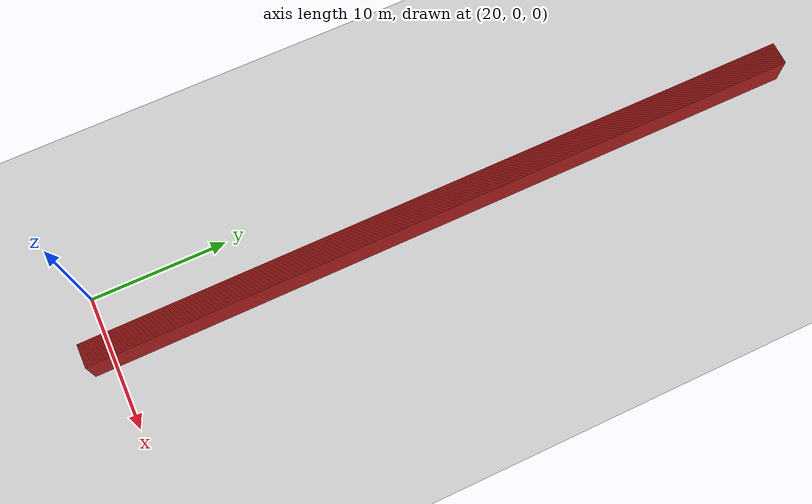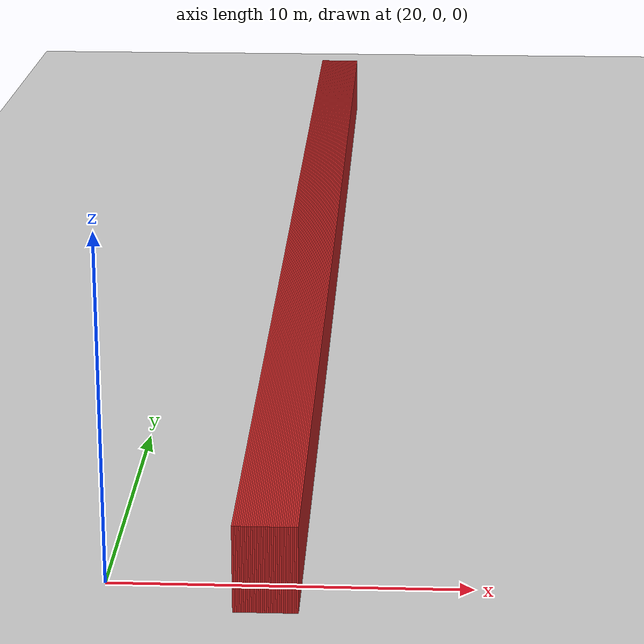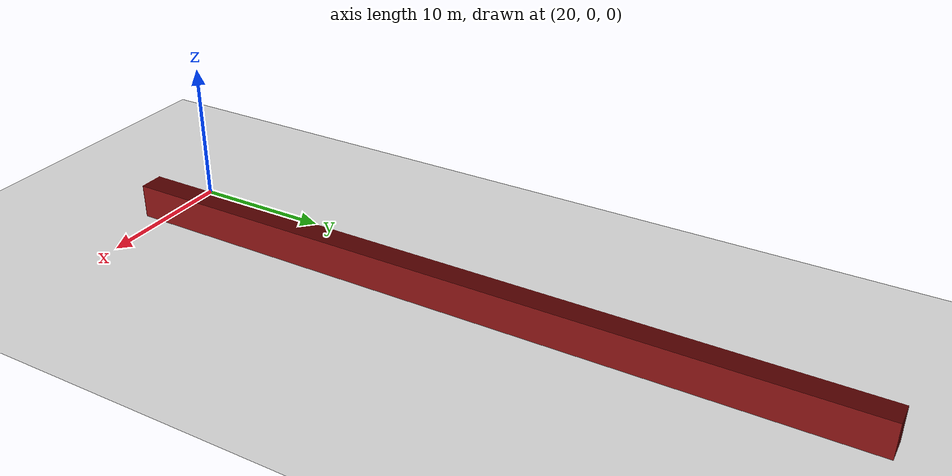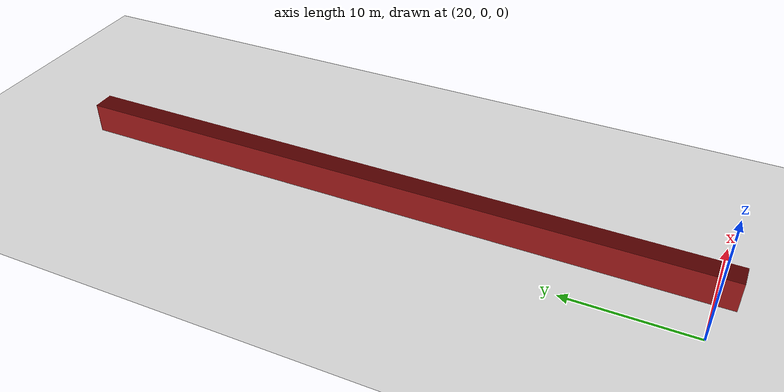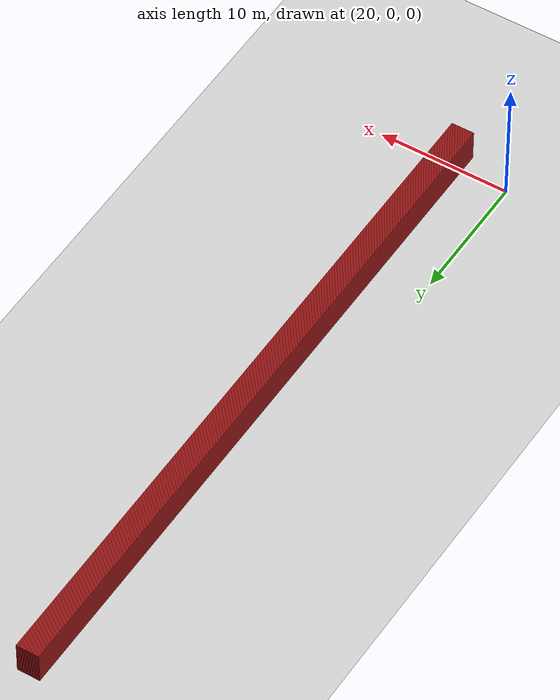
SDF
<sdf version="1.4">
 <world name="1_wall">
  <model name="ground_plane">
   <static>1</static>
   <link name="link">
    <collision name="collision">
     <geometry><plane><normal>0 0 1</normal><size>1000 1000</size></plane></geometry>
     <surface><friction><ode><mu>100</mu><mu2>50</mu2></ode></friction></surface>
    </collision>
    <visual name="visual">
     <cast_shadows>0</cast_shadows>
     <geometry><plane><normal>0 0 1</normal><size>10000 10000</size></plane></geometry>
     <material>
      <script><uri>file://media/materials/scripts/gazebo.material</uri><name>Gazebo/Grey</name></script>
     </material>
    </visual>
    <velocity_decay><linear>0</linear><angular>0</angular></velocity_decay>
   </link>
  </model>
  <model name="Wall_502">
   <static>1</static>
   <link name="Wall_502">
    <collision name="Wall_Collision_502">
     <geometry><box><size>53.65 0.05 2.5</size></box></geometry>
     <pose>0 0 1.25 0 -0 0</pose>
    </collision>
    <visual name="Wall_Visual_502">
     <pose>0 0 1.25 0 -0 0</pose>
     <geometry><box><size>53.65 0.05 2.5</size></box></geometry>
     <material>
      <script><uri>file://media/materials/scripts/gazebo.material</uri><name>Gazebo/Red</name></script>
     </material>
    </visual>
    <velocity_decay><linear>0</linear><angular>0</angular></velocity_decay>
    <pose>23.6 25.3 0 0 0 1.5707963267948966</pose>
   </link>
  </model>
  <model name="Wall_503">
   <static>1</static>
   <link name="Wall_503">
    <collision name="Wall_Collision_503">
     <geometry><box><size>53.65 0.05 2.5</size></box></geometry>
     <pose>0 0 1.25 0 -0 0</pose>
    </collision>
    <visual name="Wall_Visual_503">
     <pose>0 0 1.25 0 -0 0</pose>
     <geometry><box><size>53.65 0.05 2.5</size></box></geometry>
     <material>
      <script><uri>file://media/materials/scripts/gazebo.material</uri><name>Gazebo/Red</name></script>
     </material>
    </visual>
    <velocity_decay><linear>0</linear><angular>0</angular></velocity_decay>
    <pose>23.65 25.3 0 0 0 1.5707963267948966</pose>
   </link>
  </model>
  <model name="Wall_504">
   <static>1</static>
   <link name="Wall_504">
    <collision name="Wall_Collision_504">
     <geometry><box><size>53.65 0.05 2.5</size></box></geometry>
     <pose>0 0 1.25 0 -0 0</pose>
    </collision>
    <visual name="Wall_Visual_504">
     <pose>0 0 1.25 0 -0 0</pose>
     <geometry><box><size>53.65 0.05 2.5</size></box></geometry>
     <material>
      <script><uri>file://media/materials/scripts/gazebo.material</uri><name>Gazebo/Red</name></script>
     </material>
    </visual>
    <velocity_decay><linear>0</linear><angular>0</angular></velocity_decay>
    <pose>23.7 25.3 0 0 0 1.5707963267948966</pose>
   </link>
  </model>
  <model name="Wall_505">
   <static>1</static>
   <link name="Wall_505">
    <collision name="Wall_Collision_505">
     <geometry><box><size>53.65 0.05 2.5</size></box></geometry>
     <pose>0 0 1.25 0 -0 0</pose>
    </collision>
    <visual name="Wall_Visual_505">
     <pose>0 0 1.25 0 -0 0</pose>
     <geometry><box><size>53.65 0.05 2.5</size></box></geometry>
     <material>
      <script><uri>file://media/materials/scripts/gazebo.material</uri><name>Gazebo/Red</name></script>
     </material>
    </visual>
    <velocity_decay><linear>0</linear><angular>0</angular></velocity_decay>
    <pose>23.75 25.3 0 0 0 1.5707963267948966</pose>
   </link>
  </model>
  <model name="Wall_506">
   <static>1</static>
   <link name="Wall_506">
    <collision name="Wall_Collision_506">
     <geometry><box><size>53.65 0.05 2.5</size></box></geometry>
     <pose>0 0 1.25 0 -0 0</pose>
    </collision>
    <visual name="Wall_Visual_506">
     <pose>0 0 1.25 0 -0 0</pose>
     <geometry><box><size>53.65 0.05 2.5</size></box></geometry>
     <material>
      <script><uri>file://media/materials/scripts/gazebo.material</uri><name>Gazebo/Red</name></script>
     </material>
    </visual>
    <velocity_decay><linear>0</linear><angular>0</angular></velocity_decay>
    <pose>23.8 25.3 0 0 0 1.5707963267948966</pose>
   </link>
  </model>
  <model name="Wall_507">
   <static>1</static>
   <link name="Wall_507">
    <collision name="Wall_Collision_507">
     <geometry><box><size>53.65 0.05 2.5</size></box></geometry>
     <pose>0 0 1.25 0 -0 0</pose>
    </collision>
    <visual name="Wall_Visual_507">
     <pose>0 0 1.25 0 -0 0</pose>
     <geometry><box><size>53.65 0.05 2.5</size></box></geometry>
     <material>
      <script><uri>file://media/materials/scripts/gazebo.material</uri><name>Gazebo/Red</name></script>
     </material>
    </visual>
    <velocity_decay><linear>0</linear><angular>0</angular></velocity_decay>
    <pose>23.85 25.3 0 0 0 1.5707963267948966</pose>
   </link>
  </model>
  <model name="Wall_508">
   <static>1</static>
   <link name="Wall_508">
    <collision name="Wall_Collision_508">
     <geometry><box><size>53.65 0.05 2.5</size></box></geometry>
     <pose>0 0 1.25 0 -0 0</pose>
    </collision>
    <visual name="Wall_Visual_508">
     <pose>0 0 1.25 0 -0 0</pose>
     <geometry><box><size>53.65 0.05 2.5</size></box></geometry>
     <material>
      <script><uri>file://media/materials/scripts/gazebo.material</uri><name>Gazebo/Red</name></script>
     </material>
    </visual>
    <velocity_decay><linear>0</linear><angular>0</angular></velocity_decay>
    <pose>23.9 25.3 0 0 0 1.5707963267948966</pose>
   </link>
  </model>
  <model name="Wall_509">
   <static>1</static>
   <link name="Wall_509">
    <collision name="Wall_Collision_509">
     <geometry><box><size>53.65 0.05 2.5</size></box></geometry>
     <pose>0 0 1.25 0 -0 0</pose>
    </collision>
    <visual name="Wall_Visual_509">
     <pose>0 0 1.25 0 -0 0</pose>
     <geometry><box><size>53.65 0.05 2.5</size></box></geometry>
     <material>
      <script><uri>file://media/materials/scripts/gazebo.material</uri><name>Gazebo/Red</name></script>
     </material>
    </visual>
    <velocity_decay><linear>0</linear><angular>0</angular></velocity_decay>
    <pose>23.95 25.3 0 0 0 1.5707963267948966</pose>
   </link>
  </model>
  <model name="Wall_510">
   <static>1</static>
   <link name="Wall_510">
    <collision name="Wall_Collision_510">
     <geometry><box><size>53.65 0.05 2.5</size></box></geometry>
     <pose>0 0 1.25 0 -0 0</pose>
    </collision>
    <visual name="Wall_Visual_510">
     <pose>0 0 1.25 0 -0 0</pose>
     <geometry><box><size>53.65 0.05 2.5</size></box></geometry>
     <material>
      <script><uri>file://media/materials/scripts/gazebo.material</uri><name>Gazebo/Red</name></script>
     </material>
    </visual>
    <velocity_decay><linear>0</linear><angular>0</angular></velocity_decay>
    <pose>24.0 25.3 0 0 0 1.5707963267948966</pose>
   </link>
  </model>
  <model name="Wall_511">
   <static>1</static>
   <link name="Wall_511">
    <collision name="Wall_Collision_511">
     <geometry><box><size>53.65 0.05 2.5</size></box></geometry>
     <pose>0 0 1.25 0 -0 0</pose>
    </collision>
    <visual name="Wall_Visual_511">
     <pose>0 0 1.25 0 -0 0</pose>
     <geometry><box><size>53.65 0.05 2.5</size></box></geometry>
     <material>
      <script><uri>file://media/materials/scripts/gazebo.material</uri><name>Gazebo/Red</name></script>
     </material>
    </visual>
    <velocity_decay><linear>0</linear><angular>0</angular></velocity_decay>
    <pose>24.05 25.3 0 0 0 1.5707963267948966</pose>
   </link>
  </model>
  <model name="Wall_512">
   <static>1</static>
   <link name="Wall_512">
    <collision name="Wall_Collision_512">
     <geometry><box><size>53.65 0.05 2.5</size></box></geometry>
     <pose>0 0 1.25 0 -0 0</pose>
    </collision>
    <visual name="Wall_Visual_512">
     <pose>0 0 1.25 0 -0 0</pose>
     <geometry><box><size>53.65 0.05 2.5</size></box></geometry>
     <material>
      <script><uri>file://media/materials/scripts/gazebo.material</uri><name>Gazebo/Red</name></script>
     </material>
    </visual>
    <velocity_decay><linear>0</linear><angular>0</angular></velocity_decay>
    <pose>24.1 25.3 0 0 0 1.5707963267948966</pose>
   </link>
  </model>
  <model name="Wall_513">
   <static>1</static>
   <link name="Wall_513">
    <collision name="Wall_Collision_513">
     <geometry><box><size>53.65 0.05 2.5</size></box></geometry>
     <pose>0 0 1.25 0 -0 0</pose>
    </collision>
    <visual name="Wall_Visual_513">
     <pose>0 0 1.25 0 -0 0</pose>
     <geometry><box><size>53.65 0.05 2.5</size></box></geometry>
     <material>
      <script><uri>file://media/materials/scripts/gazebo.material</uri><name>Gazebo/Red</name></script>
     </material>
    </visual>
    <velocity_decay><linear>0</linear><angular>0</angular></velocity_decay>
    <pose>24.15 25.3 0 0 0 1.5707963267948966</pose>
   </link>
  </model>
  <model name="Wall_514">
   <static>1</static>
   <link name="Wall_514">
    <collision name="Wall_Collision_514">
     <geometry><box><size>53.65 0.05 2.5</size></box></geometry>
     <pose>0 0 1.25 0 -0 0</pose>
    </collision>
    <visual name="Wall_Visual_514">
     <pose>0 0 1.25 0 -0 0</pose>
     <geometry><box><size>53.65 0.05 2.5</size></box></geometry>
     <material>
      <script><uri>file://media/materials/scripts/gazebo.material</uri><name>Gazebo/Red</name></script>
     </material>
    </visual>
    <velocity_decay><linear>0</linear><angular>0</angular></velocity_decay>
    <pose>24.2 25.3 0 0 0 1.5707963267948966</pose>
   </link>
  </model>
  <model name="Wall_515">
   <static>1</static>
   <link name="Wall_515">
    <collision name="Wall_Collision_515">
     <geometry><box><size>53.65 0.05 2.5</size></box></geometry>
     <pose>0 0 1.25 0 -0 0</pose>
    </collision>
    <visual name="Wall_Visual_515">
     <pose>0 0 1.25 0 -0 0</pose>
     <geometry><box><size>53.65 0.05 2.5</size></box></geometry>
     <material>
      <script><uri>file://media/materials/scripts/gazebo.material</uri><name>Gazebo/Red</name></script>
     </material>
    </visual>
    <velocity_decay><linear>0</linear><angular>0</angular></velocity_decay>
    <pose>24.25 25.3 0 0 0 1.5707963267948966</pose>
   </link>
  </model>
  <model name="Wall_516">
   <static>1</static>
   <link name="Wall_516">
    <collision name="Wall_Collision_516">
     <geometry><box><size>53.65 0.05 2.5</size></box></geometry>
     <pose>0 0 1.25 0 -0 0</pose>
    </collision>
    <visual name="Wall_Visual_516">
     <pose>0 0 1.25 0 -0 0</pose>
     <geometry><box><size>53.65 0.05 2.5</size></box></geometry>
     <material>
      <script><uri>file://media/materials/scripts/gazebo.material</uri><name>Gazebo/Red</name></script>
     </material>
    </visual>
    <velocity_decay><linear>0</linear><angular>0</angular></velocity_decay>
    <pose>24.3 25.3 0 0 0 1.5707963267948966</pose>
   </link>
  </model>
  <model name="Wall_517">
   <static>1</static>
   <link name="Wall_517">
    <collision name="Wall_Collision_517">
     <geometry><box><size>53.65 0.05 2.5</size></box></geometry>
     <pose>0 0 1.25 0 -0 0</pose>
    </collision>
    <visual name="Wall_Visual_517">
     <pose>0 0 1.25 0 -0 0</pose>
     <geometry><box><size>53.65 0.05 2.5</size></box></geometry>
     <material>
      <script><uri>file://media/materials/scripts/gazebo.material</uri><name>Gazebo/Red</name></script>
     </material>
    </visual>
    <velocity_decay><linear>0</linear><angular>0</angular></velocity_decay>
    <pose>24.35 25.3 0 0 0 1.5707963267948966</pose>
   </link>
  </model>
  <model name="Wall_518">
   <static>1</static>
   <link name="Wall_518">
    <collision name="Wall_Collision_518">
     <geometry><box><size>53.65 0.05 2.5</size></box></geometry>
     <pose>0 0 1.25 0 -0 0</pose>
    </collision>
    <visual name="Wall_Visual_518">
     <pose>0 0 1.25 0 -0 0</pose>
     <geometry><box><size>53.65 0.05 2.5</size></box></geometry>
     <material>
      <script><uri>file://media/materials/scripts/gazebo.material</uri><name>Gazebo/Red</name></script>
     </material>
    </visual>
    <velocity_decay><linear>0</linear><angular>0</angular></velocity_decay>
    <pose>24.4 25.3 0 0 0 1.5707963267948966</pose>
   </link>
  </model>
  <model name="Wall_519">
   <static>1</static>
   <link name="Wall_519">
    <collision name="Wall_Collision_519">
     <geometry><box><size>53.65 0.05 2.5</size></box></geometry>
     <pose>0 0 1.25 0 -0 0</pose>
    </collision>
    <visual name="Wall_Visual_519">
     <pose>0 0 1.25 0 -0 0</pose>
     <geometry><box><size>53.65 0.05 2.5</size></box></geometry>
     <material>
      <script><uri>file://media/materials/scripts/gazebo.material</uri><name>Gazebo/Red</name></script>
     </material>
    </visual>
    <velocity_decay><linear>0</linear><angular>0</angular></velocity_decay>
    <pose>24.45 25.3 0 0 0 1.5707963267948966</pose>
   </link>
  </model>
  <model name="Wall_520">
   <static>1</static>
   <link name="Wall_520">
    <collision name="Wall_Collision_520">
     <geometry><box><size>53.65 0.05 2.5</size></box></geometry>
     <pose>0 0 1.25 0 -0 0</pose>
    </collision>
    <visual name="Wall_Visual_520">
     <pose>0 0 1.25 0 -0 0</pose>
     <geometry><box><size>53.65 0.05 2.5</size></box></geometry>
     <material>
      <script><uri>file://media/materials/scripts/gazebo.material</uri><name>Gazebo/Red</name></script>
     </material>
    </visual>
    <velocity_decay><linear>0</linear><angular>0</angular></velocity_decay>
    <pose>24.5 25.3 0 0 0 1.5707963267948966</pose>
   </link>
  </model>
  <model name="Wall_521">
   <static>1</static>
   <link name="Wall_521">
    <collision name="Wall_Collision_521">
     <geometry><box><size>53.65 0.05 2.5</size></box></geometry>
     <pose>0 0 1.25 0 -0 0</pose>
    </collision>
    <visual name="Wall_Visual_521">
     <pose>0 0 1.25 0 -0 0</pose>
     <geometry><box><size>53.65 0.05 2.5</size></box></geometry>
     <material>
      <script><uri>file://media/materials/scripts/gazebo.material</uri><name>Gazebo/Red</name></script>
     </material>
    </visual>
    <velocity_decay><linear>0</linear><angular>0</angular></velocity_decay>
    <pose>24.55 25.3 0 0 0 1.5707963267948966</pose>
   </link>
  </model>
  <model name="Wall_522">
   <static>1</static>
   <link name="Wall_522">
    <collision name="Wall_Collision_522">
     <geometry><box><size>53.65 0.05 2.5</size></box></geometry>
     <pose>0 0 1.25 0 -0 0</pose>
    </collision>
    <visual name="Wall_Visual_522">
     <pose>0 0 1.25 0 -0 0</pose>
     <geometry><box><size>53.65 0.05 2.5</size></box></geometry>
     <material>
      <script><uri>file://media/materials/scripts/gazebo.material</uri><name>Gazebo/Red</name></script>
     </material>
    </visual>
    <velocity_decay><linear>0</linear><angular>0</angular></velocity_decay>
    <pose>24.6 25.3 0 0 0 1.5707963267948966</pose>
   </link>
  </model>
  <model name="Wall_523">
   <static>1</static>
   <link name="Wall_523">
    <collision name="Wall_Collision_523">
     <geometry><box><size>53.65 0.05 2.5</size></box></geometry>
     <pose>0 0 1.25 0 -0 0</pose>
    </collision>
    <visual name="Wall_Visual_523">
     <pose>0 0 1.25 0 -0 0</pose>
     <geometry><box><size>53.65 0.05 2.5</size></box></geometry>
     <material>
      <script><uri>file://media/materials/scripts/gazebo.material</uri><name>Gazebo/Red</name></script>
     </material>
    </visual>
    <velocity_decay><linear>0</linear><angular>0</angular></velocity_decay>
    <pose>24.65 25.3 0 0 0 1.5707963267948966</pose>
   </link>
  </model>
  <model name="Wall_524">
   <static>1</static>
   <link name="Wall_524">
    <collision name="Wall_Collision_524">
     <geometry><box><size>53.65 0.05 2.5</size></box></geometry>
     <pose>0 0 1.25 0 -0 0</pose>
    </collision>
    <visual name="Wall_Visual_524">
     <pose>0 0 1.25 0 -0 0</pose>
     <geometry><box><size>53.65 0.05 2.5</size></box></geometry>
     <material>
      <script><uri>file://media/materials/scripts/gazebo.material</uri><name>Gazebo/Red</name></script>
     </material>
    </visual>
    <velocity_decay><linear>0</linear><angular>0</angular></velocity_decay>
    <pose>24.7 25.3 0 0 0 1.5707963267948966</pose>
   </link>
  </model>
  <model name="Wall_525">
   <static>1</static>
   <link name="Wall_525">
    <collision name="Wall_Collision_525">
     <geometry><box><size>53.65 0.05 2.5</size></box></geometry>
     <pose>0 0 1.25 0 -0 0</pose>
    </collision>
    <visual name="Wall_Visual_525">
     <pose>0 0 1.25 0 -0 0</pose>
     <geometry><box><size>53.65 0.05 2.5</size></box></geometry>
     <material>
      <script><uri>file://media/materials/scripts/gazebo.material</uri><name>Gazebo/Red</name></script>
     </material>
    </visual>
    <velocity_decay><linear>0</linear><angular>0</angular></velocity_decay>
    <pose>24.75 25.3 0 0 0 1.5707963267948966</pose>
   </link>
  </model>
  <model name="Wall_526">
   <static>1</static>
   <link name="Wall_526">
    <collision name="Wall_Collision_526">
     <geometry><box><size>53.65 0.05 2.5</size></box></geometry>
     <pose>0 0 1.25 0 -0 0</pose>
    </collision>
    <visual name="Wall_Visual_526">
     <pose>0 0 1.25 0 -0 0</pose>
     <geometry><box><size>53.65 0.05 2.5</size></box></geometry>
     <material>
      <script><uri>file://media/materials/scripts/gazebo.material</uri><name>Gazebo/Red</name></script>
     </material>
    </visual>
    <velocity_decay><linear>0</linear><angular>0</angular></velocity_decay>
    <pose>24.8 25.3 0 0 0 1.5707963267948966</pose>
   </link>
  </model>
  <model name="Wall_527">
   <static>1</static>
   <link name="Wall_527">
    <collision name="Wall_Collision_527">
     <geometry><box><size>53.65 0.05 2.5</size></box></geometry>
     <pose>0 0 1.25 0 -0 0</pose>
    </collision>
    <visual name="Wall_Visual_527">
     <pose>0 0 1.25 0 -0 0</pose>
     <geometry><box><size>53.65 0.05 2.5</size></box></geometry>
     <material>
      <script><uri>file://media/materials/scripts/gazebo.material</uri><name>Gazebo/Red</name></script>
     </material>
    </visual>
    <velocity_decay><linear>0</linear><angular>0</angular></velocity_decay>
    <pose>24.85 25.3 0 0 0 1.5707963267948966</pose>
   </link>
  </model>
  <model name="Wall_528">
   <static>1</static>
   <link name="Wall_528">
    <collision name="Wall_Collision_528">
     <geometry><box><size>53.65 0.05 2.5</size></box></geometry>
     <pose>0 0 1.25 0 -0 0</pose>
    </collision>
    <visual name="Wall_Visual_528">
     <pose>0 0 1.25 0 -0 0</pose>
     <geometry><box><size>53.65 0.05 2.5</size></box></geometry>
     <material>
      <script><uri>file://media/materials/scripts/gazebo.material</uri><name>Gazebo/Red</name></script>
     </material>
    </visual>
    <velocity_decay><linear>0</linear><angular>0</angular></velocity_decay>
    <pose>24.9 25.3 0 0 0 1.5707963267948966</pose>
   </link>
  </model>
  <model name="Wall_529">
   <static>1</static>
   <link name="Wall_529">
    <collision name="Wall_Collision_529">
     <geometry><box><size>53.65 0.05 2.5</size></box></geometry>
     <pose>0 0 1.25 0 -0 0</pose>
    </collision>
    <visual name="Wall_Visual_529">
     <pose>0 0 1.25 0 -0 0</pose>
     <geometry><box><size>53.65 0.05 2.5</size></box></geometry>
     <material>
      <script><uri>file://media/materials/scripts/gazebo.material</uri><name>Gazebo/Red</name></script>
     </material>
    </visual>
    <velocity_decay><linear>0</linear><angular>0</angular></velocity_decay>
    <pose>24.95 25.3 0 0 0 1.5707963267948966</pose>
   </link>
  </model>
  <model name="Wall_530">
   <static>1</static>
   <link name="Wall_530">
    <collision name="Wall_Collision_530">
     <geometry><box><size>53.65 0.05 2.5</size></box></geometry>
     <pose>0 0 1.25 0 -0 0</pose>
    </collision>
    <visual name="Wall_Visual_530">
     <pose>0 0 1.25 0 -0 0</pose>
     <geometry><box><size>53.65 0.05 2.5</size></box></geometry>
     <material>
      <script><uri>file://media/materials/scripts/gazebo.material</uri><name>Gazebo/Red</name></script>
     </material>
    </visual>
    <velocity_decay><linear>0</linear><angular>0</angular></velocity_decay>
    <pose>25.0 25.3 0 0 0 1.5707963267948966</pose>
   </link>
  </model>
  <model name="Wall_531">
   <static>1</static>
   <link name="Wall_531">
    <collision name="Wall_Collision_531">
     <geometry><box><size>53.65 0.05 2.5</size></box></geometry>
     <pose>0 0 1.25 0 -0 0</pose>
    </collision>
    <visual name="Wall_Visual_531">
     <pose>0 0 1.25 0 -0 0</pose>
     <geometry><box><size>53.65 0.05 2.5</size></box></geometry>
     <material>
      <script><uri>file://media/materials/scripts/gazebo.material</uri><name>Gazebo/Red</name></script>
     </material>
    </visual>
    <velocity_decay><linear>0</linear><angular>0</angular></velocity_decay>
    <pose>25.05 25.3 0 0 0 1.5707963267948966</pose>
   </link>
  </model>
  <model name="Wall_532">
   <static>1</static>
   <link name="Wall_532">
    <collision name="Wall_Collision_532">
     <geometry><box><size>53.65 0.05 2.5</size></box></geometry>
     <pose>0 0 1.25 0 -0 0</pose>
    </collision>
    <visual name="Wall_Visual_532">
     <pose>0 0 1.25 0 -0 0</pose>
     <geometry><box><size>53.65 0.05 2.5</size></box></geometry>
     <material>
      <script><uri>file://media/materials/scripts/gazebo.material</uri><name>Gazebo/Red</name></script>
     </material>
    </visual>
    <velocity_decay><linear>0</linear><angular>0</angular></velocity_decay>
    <pose>25.1 25.3 0 0 0 1.5707963267948966</pose>
   </link>
  </model>
  <model name="Wall_533">
   <static>1</static>
   <link name="Wall_533">
    <collision name="Wall_Collision_533">
     <geometry><box><size>53.65 0.05 2.5</size></box></geometry>
     <pose>0 0 1.25 0 -0 0</pose>
    </collision>
    <visual name="Wall_Visual_533">
     <pose>0 0 1.25 0 -0 0</pose>
     <geometry><box><size>53.65 0.05 2.5</size></box></geometry>
     <material>
      <script><uri>file://media/materials/scripts/gazebo.material</uri><name>Gazebo/Red</name></script>
     </material>
    </visual>
    <velocity_decay><linear>0</linear><angular>0</angular></velocity_decay>
    <pose>25.15 25.3 0 0 0 1.5707963267948966</pose>
   </link>
  </model>
  <model name="Wall_534">
   <static>1</static>
   <link name="Wall_534">
    <collision name="Wall_Collision_534">
     <geometry><box><size>53.65 0.05 2.5</size></box></geometry>
     <pose>0 0 1.25 0 -0 0</pose>
    </collision>
    <visual name="Wall_Visual_534">
     <pose>0 0 1.25 0 -0 0</pose>
     <geometry><box><size>53.65 0.05 2.5</size></box></geometry>
     <material>
      <script><uri>file://media/materials/scripts/gazebo.material</uri><name>Gazebo/Red</name></script>
     </material>
    </visual>
    <velocity_decay><linear>0</linear><angular>0</angular></velocity_decay>
    <pose>25.2 25.3 0 0 0 1.5707963267948966</pose>
   </link>
  </model>
  <model name="Wall_535">
   <static>1</static>
   <link name="Wall_535">
    <collision name="Wall_Collision_535">
     <geometry><box><size>53.65 0.05 2.5</size></box></geometry>
     <pose>0 0 1.25 0 -0 0</pose>
    </collision>
    <visual name="Wall_Visual_535">
     <pose>0 0 1.25 0 -0 0</pose>
     <geometry><box><size>53.65 0.05 2.5</size></box></geometry>
     <material>
      <script><uri>file://media/materials/scripts/gazebo.material</uri><name>Gazebo/Red</name></script>
     </material>
    </visual>
    <velocity_decay><linear>0</linear><angular>0</angular></velocity_decay>
    <pose>25.25 25.3 0 0 0 1.5707963267948966</pose>
   </link>
  </model>
  <model name="Wall_536">
   <static>1</static>
   <link name="Wall_536">
    <collision name="Wall_Collision_536">
     <geometry><box><size>53.65 0.05 2.5</size></box></geometry>
     <pose>0 0 1.25 0 -0 0</pose>
    </collision>
    <visual name="Wall_Visual_536">
     <pose>0 0 1.25 0 -0 0</pose>
     <geometry><box><size>53.65 0.05 2.5</size></box></geometry>
     <material>
      <script><uri>file://media/materials/scripts/gazebo.material</uri><name>Gazebo/Red</name></script>
     </material>
    </visual>
    <velocity_decay><linear>0</linear><angular>0</angular></velocity_decay>
    <pose>25.3 25.3 0 0 0 1.5707963267948966</pose>
   </link>
  </model>
 </world>
</sdf>
